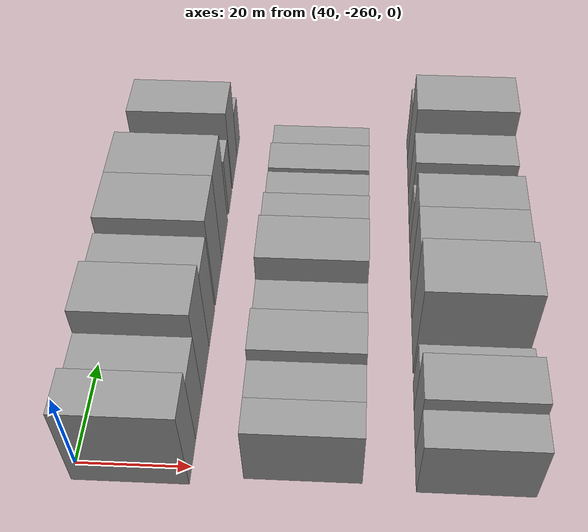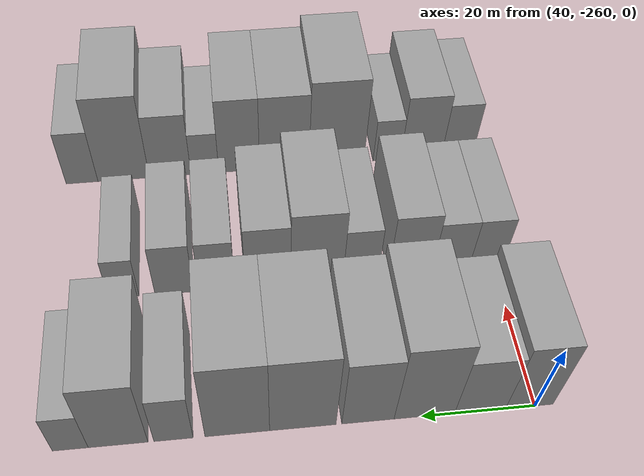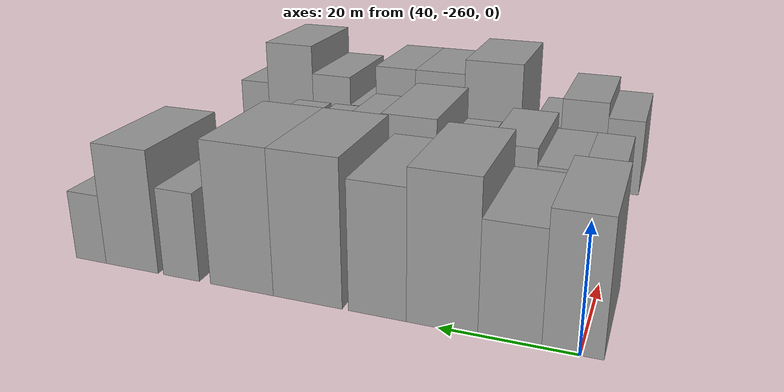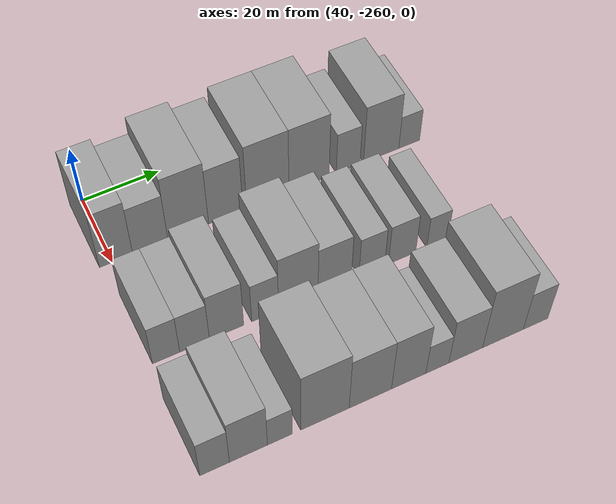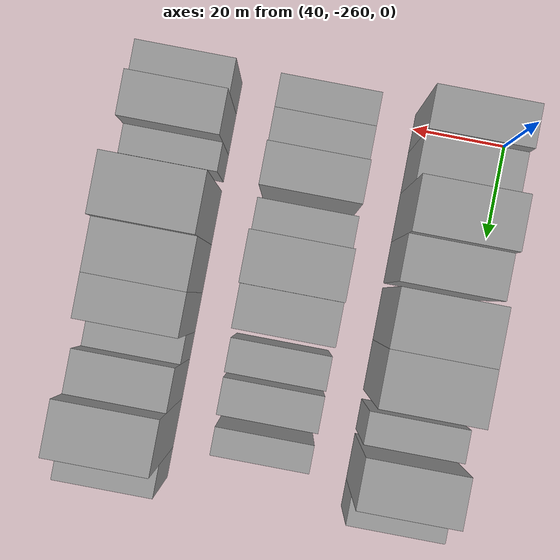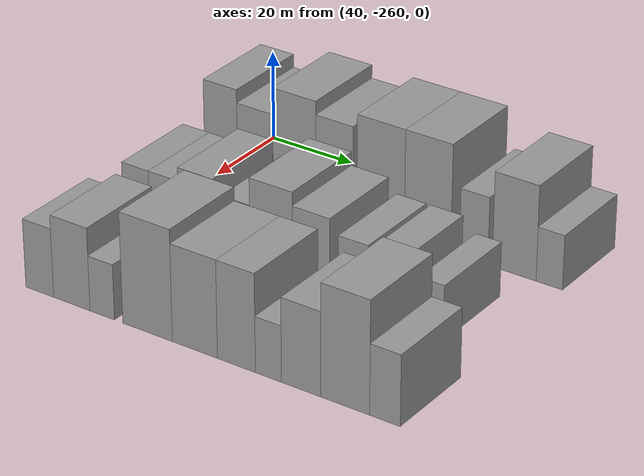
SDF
<sdf version="1.6">
 <world name="default">
  <model name="building_10">
   <static>1</static>
   <pose>50.0000 -258.9902 0 0.000000 0.000000 0.000000</pose>
   <link name="link">
    <pose>0 0 10.50 0 0 0</pose>
    <collision name="collision"><geometry><box><size>20.0000 8.4001 21.0000</size></box></geometry></collision>
    <visual name="visual">
     <cast_shadows>0</cast_shadows>
     <geometry><box><size>20.0000 8.4001 21.0000</size></box></geometry>
     <material>
      <script>
       <uri>model://grey_wall/materials/scripts</uri>
       <uri>model://grey_wall/materials/textures</uri>
       <name>vrc/grey_wall</name>
      </script>
     </material>
    </visual>
   </link>
  </model>
  <model name="building_11">
   <static>1</static>
   <pose>50.0000 -250.2972 0 0.000000 0.000000 0.000000</pose>
   <link name="link">
    <pose>0 0 9.00 0 0 0</pose>
    <collision name="collision"><geometry><box><size>20.0000 8.9858 18.0000</size></box></geometry></collision>
    <visual name="visual">
     <cast_shadows>0</cast_shadows>
     <geometry><box><size>20.0000 8.9858 18.0000</size></box></geometry>
     <material>
      <script>
       <uri>model://grey_wall/materials/scripts</uri>
       <uri>model://grey_wall/materials/textures</uri>
       <name>vrc/grey_wall</name>
      </script>
     </material>
    </visual>
   </link>
  </model>
  <model name="building_12">
   <static>1</static>
   <pose>50.0000 -240.5236 0 0.000000 0.000000 0.000000</pose>
   <link name="link">
    <pose>0 0 12.00 0 0 0</pose>
    <collision name="collision"><geometry><box><size>20.0000 10.5614 24.0000</size></box></geometry></collision>
    <visual name="visual">
     <cast_shadows>0</cast_shadows>
     <geometry><box><size>20.0000 10.5614 24.0000</size></box></geometry>
     <material>
      <script>
       <uri>model://grey_wall/materials/scripts</uri>
       <uri>model://grey_wall/materials/textures</uri>
       <name>vrc/grey_wall</name>
      </script>
     </material>
    </visual>
   </link>
  </model>
  <model name="building_13">
   <static>1</static>
   <pose>50.0000 -230.7263 0 0.000000 0.000000 0.000000</pose>
   <link name="link">
    <pose>0 0 10.50 0 0 0</pose>
    <collision name="collision"><geometry><box><size>20.0000 9.0333 21.0000</size></box></geometry></collision>
    <visual name="visual">
     <cast_shadows>0</cast_shadows>
     <geometry><box><size>20.0000 9.0333 21.0000</size></box></geometry>
     <material>
      <script>
       <uri>model://grey_wall/materials/scripts</uri>
       <uri>model://grey_wall/materials/textures</uri>
       <name>vrc/grey_wall</name>
      </script>
     </material>
    </visual>
   </link>
  </model>
  <model name="building_14">
   <static>1</static>
   <pose>50.0000 -219.5225 0 0.000000 0.000000 0.000000</pose>
   <link name="link">
    <pose>0 0 12.00 0 0 0</pose>
    <collision name="collision"><geometry><box><size>20.0000 11.3742 24.0000</size></box></geometry></collision>
    <visual name="visual">
     <cast_shadows>0</cast_shadows>
     <geometry><box><size>20.0000 11.3742 24.0000</size></box></geometry>
     <material>
      <script>
       <uri>model://grey_wall/materials/scripts</uri>
       <uri>model://grey_wall/materials/textures</uri>
       <name>vrc/grey_wall</name>
      </script>
     </material>
    </visual>
   </link>
  </model>
  <model name="building_15">
   <static>1</static>
   <pose>50.0000 -208.3464 0 0.000000 0.000000 0.000000</pose>
   <link name="link">
    <pose>0 0 12.00 0 0 0</pose>
    <collision name="collision"><geometry><box><size>20.0000 10.9780 24.0000</size></box></geometry></collision>
    <visual name="visual">
     <cast_shadows>0</cast_shadows>
     <geometry><box><size>20.0000 10.9780 24.0000</size></box></geometry>
     <material>
      <script>
       <uri>model://grey_wall/materials/scripts</uri>
       <uri>model://grey_wall/materials/textures</uri>
       <name>vrc/grey_wall</name>
      </script>
     </material>
    </visual>
   </link>
  </model>
  <model name="building_16">
   <static>1</static>
   <pose>50.0000 -197.5580 0 0.000000 0.000000 0.000000</pose>
   <link name="link">
    <pose>0 0 7.50 0 0 0</pose>
    <collision name="collision"><geometry><box><size>20.0000 6.5987 15.0000</size></box></geometry></collision>
    <visual name="visual">
     <cast_shadows>0</cast_shadows>
     <geometry><box><size>20.0000 6.5987 15.0000</size></box></geometry>
     <material>
      <script>
       <uri>model://grey_wall/materials/scripts</uri>
       <uri>model://grey_wall/materials/textures</uri>
       <name>vrc/grey_wall</name>
      </script>
     </material>
    </visual>
   </link>
  </model>
  <model name="building_17">
   <static>1</static>
   <pose>50.0000 -188.2668 0 0.000000 0.000000 0.000000</pose>
   <link name="link">
    <pose>0 0 10.50 0 0 0</pose>
    <collision name="collision"><geometry><box><size>20.0000 9.9837 21.0000</size></box></geometry></collision>
    <visual name="visual">
     <cast_shadows>0</cast_shadows>
     <geometry><box><size>20.0000 9.9837 21.0000</size></box></geometry>
     <material>
      <script>
       <uri>model://grey_wall/materials/scripts</uri>
       <uri>model://grey_wall/materials/textures</uri>
       <name>vrc/grey_wall</name>
      </script>
     </material>
    </visual>
   </link>
  </model>
  <model name="building_18">
   <static>1</static>
   <pose>50.0000 -180.3005 0 0.000000 0.000000 0.000000</pose>
   <link name="link">
    <pose>0 0 6.00 0 0 0</pose>
    <collision name="collision"><geometry><box><size>20.0000 5.9488 12.0000</size></box></geometry></collision>
    <visual name="visual">
     <cast_shadows>0</cast_shadows>
     <geometry><box><size>20.0000 5.9488 12.0000</size></box></geometry>
     <material>
      <script>
       <uri>model://grey_wall/materials/scripts</uri>
       <uri>model://grey_wall/materials/textures</uri>
       <name>vrc/grey_wall</name>
      </script>
     </material>
    </visual>
   </link>
  </model>
  <model name="building_84">
   <static>1</static>
   <pose>79.0000 -258.3861 0 0.000000 0.000000 0.000000</pose>
   <link name="link">
    <pose>0 0 7.50 0 0 0</pose>
    <collision name="collision"><geometry><box><size>20.0000 6.6188 15.0000</size></box></geometry></collision>
    <visual name="visual">
     <cast_shadows>0</cast_shadows>
     <geometry><box><size>20.0000 6.6188 15.0000</size></box></geometry>
     <material>
      <script>
       <uri>model://grey_wall/materials/scripts</uri>
       <uri>model://grey_wall/materials/textures</uri>
       <name>vrc/grey_wall</name>
      </script>
     </material>
    </visual>
   </link>
  </model>
  <model name="building_85">
   <static>1</static>
   <pose>79.0000 -251.4478 0 0.000000 0.000000 0.000000</pose>
   <link name="link">
    <pose>0 0 7.50 0 0 0</pose>
    <collision name="collision"><geometry><box><size>20.0000 7.2578 15.0000</size></box></geometry></collision>
    <visual name="visual">
     <cast_shadows>0</cast_shadows>
     <geometry><box><size>20.0000 7.2578 15.0000</size></box></geometry>
     <material>
      <script>
       <uri>model://grey_wall/materials/scripts</uri>
       <uri>model://grey_wall/materials/textures</uri>
       <name>vrc/grey_wall</name>
      </script>
     </material>
    </visual>
   </link>
  </model>
  <model name="building_86">
   <static>1</static>
   <pose>79.0000 -243.5681 0 0.000000 0.000000 0.000000</pose>
   <link name="link">
    <pose>0 0 9.00 0 0 0</pose>
    <collision name="collision"><geometry><box><size>20.0000 8.5016 18.0000</size></box></geometry></collision>
    <visual name="visual">
     <cast_shadows>0</cast_shadows>
     <geometry><box><size>20.0000 8.5016 18.0000</size></box></geometry>
     <material>
      <script>
       <uri>model://grey_wall/materials/scripts</uri>
       <uri>model://grey_wall/materials/textures</uri>
       <name>vrc/grey_wall</name>
      </script>
     </material>
    </visual>
   </link>
  </model>
  <model name="building_87">
   <static>1</static>
   <pose>79.0000 -233.9221 0 0.000000 0.000000 0.000000</pose>
   <link name="link">
    <pose>0 0 7.50 0 0 0</pose>
    <collision name="collision"><geometry><box><size>20.0000 6.7903 15.0000</size></box></geometry></collision>
    <visual name="visual">
     <cast_shadows>0</cast_shadows>
     <geometry><box><size>20.0000 6.7903 15.0000</size></box></geometry>
     <material>
      <script>
       <uri>model://grey_wall/materials/scripts</uri>
       <uri>model://grey_wall/materials/textures</uri>
       <name>vrc/grey_wall</name>
      </script>
     </material>
    </visual>
   </link>
  </model>
  <model name="building_88">
   <static>1</static>
   <pose>79.0000 -225.4877 0 0.000000 0.000000 0.000000</pose>
   <link name="link">
    <pose>0 0 10.50 0 0 0</pose>
    <collision name="collision"><geometry><box><size>20.0000 10.0786 21.0000</size></box></geometry></collision>
    <visual name="visual">
     <cast_shadows>0</cast_shadows>
     <geometry><box><size>20.0000 10.0786 21.0000</size></box></geometry>
     <material>
      <script>
       <uri>model://grey_wall/materials/scripts</uri>
       <uri>model://grey_wall/materials/textures</uri>
       <name>vrc/grey_wall</name>
      </script>
     </material>
    </visual>
   </link>
  </model>
  <model name="building_89">
   <static>1</static>
   <pose>79.0000 -216.1134 0 0.000000 0.000000 0.000000</pose>
   <link name="link">
    <pose>0 0 9.00 0 0 0</pose>
    <collision name="collision"><geometry><box><size>20.0000 8.6700 18.0000</size></box></geometry></collision>
    <visual name="visual">
     <cast_shadows>0</cast_shadows>
     <geometry><box><size>20.0000 8.6700 18.0000</size></box></geometry>
     <material>
      <script>
       <uri>model://grey_wall/materials/scripts</uri>
       <uri>model://grey_wall/materials/textures</uri>
       <name>vrc/grey_wall</name>
      </script>
     </material>
    </visual>
   </link>
  </model>
  <model name="building_90">
   <static>1</static>
   <pose>79.0000 -206.3821 0 0.000000 0.000000 0.000000</pose>
   <link name="link">
    <pose>0 0 7.50 0 0 0</pose>
    <collision name="collision"><geometry><box><size>20.0000 6.7925 15.0000</size></box></geometry></collision>
    <visual name="visual">
     <cast_shadows>0</cast_shadows>
     <geometry><box><size>20.0000 6.7925 15.0000</size></box></geometry>
     <material>
      <script>
       <uri>model://grey_wall/materials/scripts</uri>
       <uri>model://grey_wall/materials/textures</uri>
       <name>vrc/grey_wall</name>
      </script>
     </material>
    </visual>
   </link>
  </model>
  <model name="building_91">
   <static>1</static>
   <pose>79.0000 -198.3177 0 0.000000 0.000000 0.000000</pose>
   <link name="link">
    <pose>0 0 7.50 0 0 0</pose>
    <collision name="collision"><geometry><box><size>20.0000 7.3364 15.0000</size></box></geometry></collision>
    <visual name="visual">
     <cast_shadows>0</cast_shadows>
     <geometry><box><size>20.0000 7.3364 15.0000</size></box></geometry>
     <material>
      <script>
       <uri>model://grey_wall/materials/scripts</uri>
       <uri>model://grey_wall/materials/textures</uri>
       <name>vrc/grey_wall</name>
      </script>
     </material>
    </visual>
   </link>
  </model>
  <model name="building_92">
   <static>1</static>
   <pose>79.0000 -188.7848 0 0.000000 0.000000 0.000000</pose>
   <link name="link">
    <pose>0 0 6.00 0 0 0</pose>
    <collision name="collision"><geometry><box><size>20.0000 5.7293 12.0000</size></box></geometry></collision>
    <visual name="visual">
     <cast_shadows>0</cast_shadows>
     <geometry><box><size>20.0000 5.7293 12.0000</size></box></geometry>
     <material>
      <script>
       <uri>model://grey_wall/materials/scripts</uri>
       <uri>model://grey_wall/materials/textures</uri>
       <name>vrc/grey_wall</name>
      </script>
     </material>
    </visual>
   </link>
  </model>
  <model name="building_161">
   <static>1</static>
   <pose>108.0000 -259.4225 0 0.000000 0.000000 0.000000</pose>
   <link name="link">
    <pose>0 0 7.50 0 0 0</pose>
    <collision name="collision"><geometry><box><size>20.0000 6.8821 15.0000</size></box></geometry></collision>
    <visual name="visual">
     <cast_shadows>0</cast_shadows>
     <geometry><box><size>20.0000 6.8821 15.0000</size></box></geometry>
     <material>
      <script>
       <uri>model://grey_wall/materials/scripts</uri>
       <uri>model://grey_wall/materials/textures</uri>
       <name>vrc/grey_wall</name>
      </script>
     </material>
    </visual>
   </link>
  </model>
  <model name="building_162">
   <static>1</static>
   <pose>108.0000 -251.5320 0 0.000000 0.000000 0.000000</pose>
   <link name="link">
    <pose>0 0 9.00 0 0 0</pose>
    <collision name="collision"><geometry><box><size>20.0000 8.8990 18.0000</size></box></geometry></collision>
    <visual name="visual">
     <cast_shadows>0</cast_shadows>
     <geometry><box><size>20.0000 8.8990 18.0000</size></box></geometry>
     <material>
      <script>
       <uri>model://grey_wall/materials/scripts</uri>
       <uri>model://grey_wall/materials/textures</uri>
       <name>vrc/grey_wall</name>
      </script>
     </material>
    </visual>
   </link>
  </model>
  <model name="building_163">
   <static>1</static>
   <pose>108.0000 -244.1172 0 0.000000 0.000000 0.000000</pose>
   <link name="link">
    <pose>0 0 6.00 0 0 0</pose>
    <collision name="collision"><geometry><box><size>20.0000 5.9307 12.0000</size></box></geometry></collision>
    <visual name="visual">
     <cast_shadows>0</cast_shadows>
     <geometry><box><size>20.0000 5.9307 12.0000</size></box></geometry>
     <material>
      <script>
       <uri>model://grey_wall/materials/scripts</uri>
       <uri>model://grey_wall/materials/textures</uri>
       <name>vrc/grey_wall</name>
      </script>
     </material>
    </visual>
   </link>
  </model>
  <model name="building_164">
   <static>1</static>
   <pose>108.0000 -233.2729 0 0.000000 0.000000 0.000000</pose>
   <link name="link">
    <pose>0 0 12.00 0 0 0</pose>
    <collision name="collision"><geometry><box><size>20.0000 11.7579 24.0000</size></box></geometry></collision>
    <visual name="visual">
     <cast_shadows>0</cast_shadows>
     <geometry><box><size>20.0000 11.7579 24.0000</size></box></geometry>
     <material>
      <script>
       <uri>model://grey_wall/materials/scripts</uri>
       <uri>model://grey_wall/materials/textures</uri>
       <name>vrc/grey_wall</name>
      </script>
     </material>
    </visual>
   </link>
  </model>
  <model name="building_165">
   <static>1</static>
   <pose>108.0000 -222.1537 0 0.000000 0.000000 0.000000</pose>
   <link name="link">
    <pose>0 0 10.50 0 0 0</pose>
    <collision name="collision"><geometry><box><size>20.0000 10.4803 21.0000</size></box></geometry></collision>
    <visual name="visual">
     <cast_shadows>0</cast_shadows>
     <geometry><box><size>20.0000 10.4803 21.0000</size></box></geometry>
     <material>
      <script>
       <uri>model://grey_wall/materials/scripts</uri>
       <uri>model://grey_wall/materials/textures</uri>
       <name>vrc/grey_wall</name>
      </script>
     </material>
    </visual>
   </link>
  </model>
  <model name="building_166">
   <static>1</static>
   <pose>108.0000 -212.5856 0 0.000000 0.000000 0.000000</pose>
   <link name="link">
    <pose>0 0 10.50 0 0 0</pose>
    <collision name="collision"><geometry><box><size>20.0000 8.6560 21.0000</size></box></geometry></collision>
    <visual name="visual">
     <cast_shadows>0</cast_shadows>
     <geometry><box><size>20.0000 8.6560 21.0000</size></box></geometry>
     <material>
      <script>
       <uri>model://grey_wall/materials/scripts</uri>
       <uri>model://grey_wall/materials/textures</uri>
       <name>vrc/grey_wall</name>
      </script>
     </material>
    </visual>
   </link>
  </model>
  <model name="building_167">
   <static>1</static>
   <pose>108.0000 -205.3236 0 0.000000 0.000000 0.000000</pose>
   <link name="link">
    <pose>0 0 6.00 0 0 0</pose>
    <collision name="collision"><geometry><box><size>20.0000 5.8680 12.0000</size></box></geometry></collision>
    <visual name="visual">
     <cast_shadows>0</cast_shadows>
     <geometry><box><size>20.0000 5.8680 12.0000</size></box></geometry>
     <material>
      <script>
       <uri>model://grey_wall/materials/scripts</uri>
       <uri>model://grey_wall/materials/textures</uri>
       <name>vrc/grey_wall</name>
      </script>
     </material>
    </visual>
   </link>
  </model>
  <model name="building_168">
   <static>1</static>
   <pose>108.0000 -198.0302 0 0.000000 0.000000 0.000000</pose>
   <link name="link">
    <pose>0 0 9.00 0 0 0</pose>
    <collision name="collision"><geometry><box><size>20.0000 8.7187 18.0000</size></box></geometry></collision>
    <visual name="visual">
     <cast_shadows>0</cast_shadows>
     <geometry><box><size>20.0000 8.7187 18.0000</size></box></geometry>
     <material>
      <script>
       <uri>model://grey_wall/materials/scripts</uri>
       <uri>model://grey_wall/materials/textures</uri>
       <name>vrc/grey_wall</name>
      </script>
     </material>
    </visual>
   </link>
  </model>
  <model name="building_169">
   <static>1</static>
   <pose>108.0000 -188.3033 0 0.000000 0.000000 0.000000</pose>
   <link name="link">
    <pose>0 0 12.00 0 0 0</pose>
    <collision name="collision"><geometry><box><size>20.0000 10.7352 24.0000</size></box></geometry></collision>
    <visual name="visual">
     <cast_shadows>0</cast_shadows>
     <geometry><box><size>20.0000 10.7352 24.0000</size></box></geometry>
     <material>
      <script>
       <uri>model://grey_wall/materials/scripts</uri>
       <uri>model://grey_wall/materials/textures</uri>
       <name>vrc/grey_wall</name>
      </script>
     </material>
    </visual>
   </link>
  </model>
  <model name="building_170">
   <static>1</static>
   <pose>108.0000 -179.6413 0 0.000000 0.000000 0.000000</pose>
   <link name="link">
    <pose>0 0 7.50 0 0 0</pose>
    <collision name="collision"><geometry><box><size>20.0000 6.5888 15.0000</size></box></geometry></collision>
    <visual name="visual">
     <cast_shadows>0</cast_shadows>
     <geometry><box><size>20.0000 6.5888 15.0000</size></box></geometry>
     <material>
      <script>
       <uri>model://grey_wall/materials/scripts</uri>
       <uri>model://grey_wall/materials/textures</uri>
       <name>vrc/grey_wall</name>
      </script>
     </material>
    </visual>
   </link>
  </model>
 </world>
</sdf>
